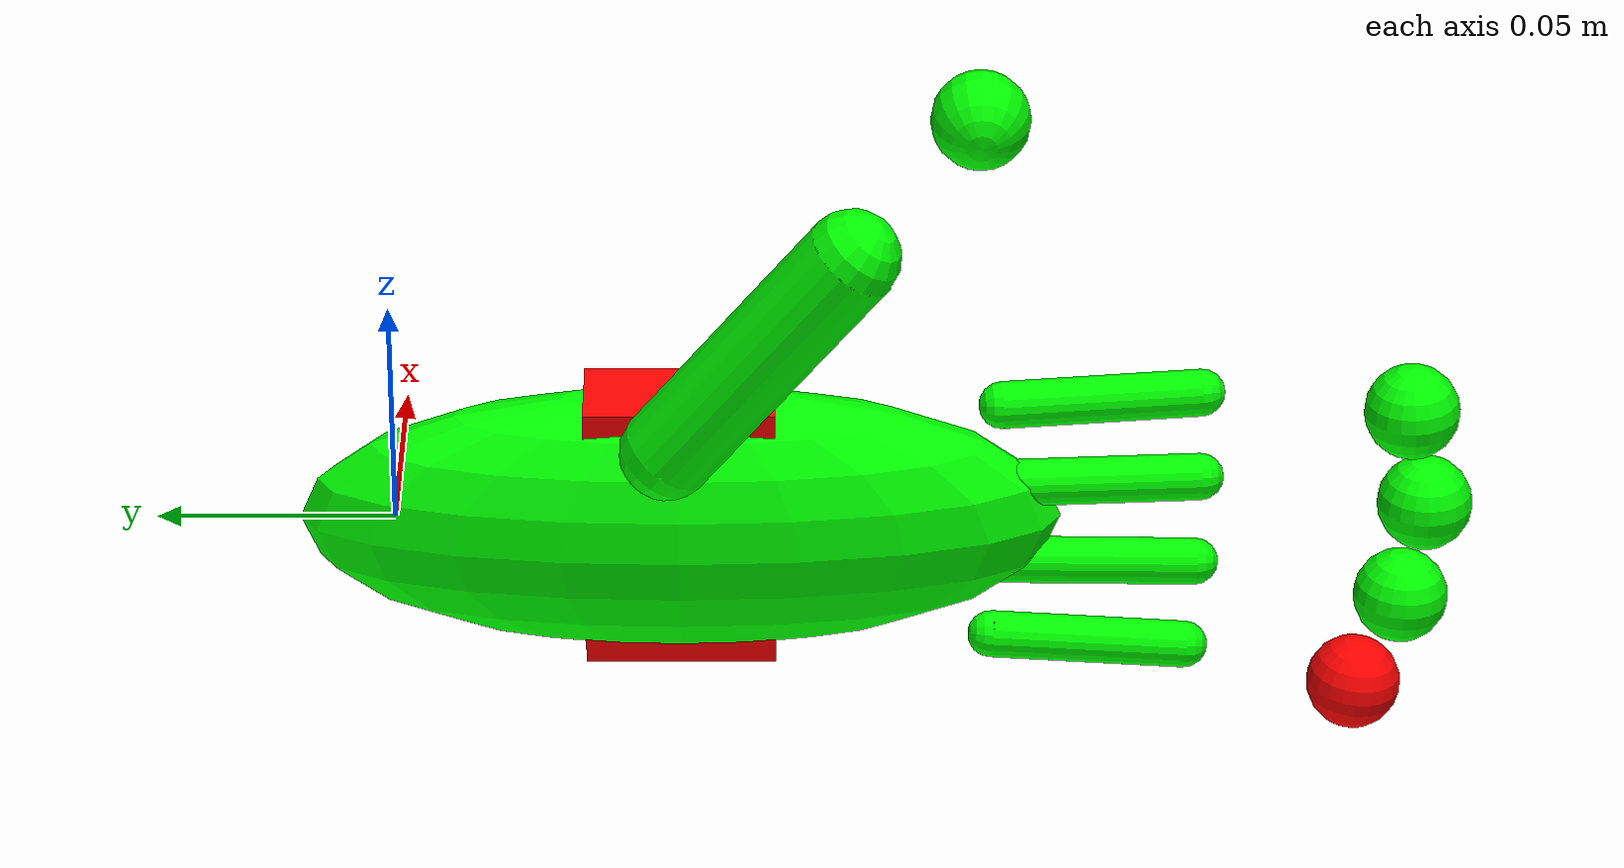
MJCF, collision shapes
<mujoco model="h1">
    <compiler angle="radian" meshdir="./meshes/" />

    <option timestep="0.02" iterations="10" ls_iterations="50">
        <flag eulerdamp="disable" />
    </option>

    <default>
        <!-- disable all contacts and use explicit collision pairs -->
        <geom condim="1" contype="0" conaffinity="0" />
        <!-- with this setting, the response time is around 1s -->
        <position kp="300" dampratio="1.0" inheritrange="1" />
        <joint damping="0.0" armature="1.0" frictionloss="0.0" />
        <default class="mimic_left">
            <site size="0.01" type="sphere" rgba="1 0 0 1" group="0" />
        </default>
    </default>

    <asset>
        <mesh name="L_hand_base_link" content_type="model/stl" file="L_hand_base_link.STL" />
        <mesh name="Link11_L" content_type="model/stl" file="Link11_L.STL" />
        <mesh name="Link12_L" content_type="model/stl" file="Link12_L.STL" />
        <mesh name="Link13_L" content_type="model/stl" file="Link13_L.STL" />
        <mesh name="Link14_L" content_type="model/stl" file="Link14_L.STL" />
        <mesh name="Link15_L" content_type="model/stl" file="Link15_L.STL" />
        <mesh name="Link16_L" content_type="model/stl" file="Link16_L.STL" />
        <mesh name="Link17_L" content_type="model/stl" file="Link17_L.STL" />
        <mesh name="Link18_L" content_type="model/stl" file="Link18_L.STL" />
        <mesh name="Link19_L" content_type="model/stl" file="Link19_L.STL" />
        <mesh name="Link20_L" content_type="model/stl" file="Link20_L.STL" />
        <mesh name="Link21_L" content_type="model/stl" file="Link21_L.STL" />
        <mesh name="Link22_L" content_type="model/stl" file="Link22_L.STL" />
    </asset>

    <worldbody>
        <body name="left_hand_base" pos="0 0 0.0">
            <site name="left_palm" pos="0 -0.06 0" class="mimic_left" type="box"
                size="0.01 0.02 0.03" />
            <joint name="left_pos_x" type="slide" pos="0 0 0" axis="1 0 0" range="-1.0 1.0" />
            <joint name="left_pos_y" type="slide" pos="0 0 0" axis="0 1 0" range="-1.0 1.0" />
            <joint name="left_pos_z" type="slide" pos="0 0 0" axis="0 0 1" range="-1.0 1.0" />
            <!-- create rotation x, y, z joints -->
            <joint name="left_rot_x" type="hinge" pos="0 0 0" axis="1 0 0" range="-6.28 6.28" />
            <joint name="left_rot_y" type="hinge" pos="0 0 0" axis="0 1 0" range="-6.28 6.28" />
            <joint name="left_rot_z" type="hinge" pos="0 0 0" axis="0 0 1" range="-6.28 6.28" />
            <!-- add palm collision, use ellipsoid since mujoco mjx doesn't support box-cylinder
            collision -->
            <geom type="ellipsoid" name="left_palm_collision" size="0.02 0.08 0.03" pos="0 -0.06 0"
                contype="0" conaffinity="0" group="3" density="0" rgba="0 1 0 1" />
            <geom type="mesh" contype="0" conaffinity="0" group="1" density="0" rgba="0.1 0.1 0.1 1"
                mesh="L_hand_base_link" />
            <geom type="mesh" rgba="0.1 0.1 0.1 1" mesh="L_hand_base_link" />
            <body name="left_thumb_proximal_base" pos="-0.01696 -0.0691 0.02045"
                quat="0.499998 0.5 -0.5 0.500002">
                <inertial pos="0.0048817 0.00038782 -0.00722"
                    quat="0.445981 0.352284 0.495833 0.656617"
                    mass="0.0018869" diaginertia="8.66031e-08 6.87331e-08 4.94199e-08" />
                <joint name="left_thumb_proximal_yaw_joint" pos="0 0 0" axis="0 0 1"
                    range="-0.1 1.3" />
                <geom type="mesh" contype="0" conaffinity="0" group="1" density="0"
                    rgba="0.1 0.1 0.1 1"
                    mesh="Link11_L" />
                <geom type="mesh" rgba="0.1 0.1 0.1 1" mesh="Link11_L" />
                <body name="left_thumb_proximal" pos="0.0099867 0.0098242 -0.0089"
                    quat="0.704571 -0.704573 -0.0598169 0.0598167">
                    <inertial pos="0.021936 -0.01279 -0.0080386"
                        quat="0.25452 0.660687 -0.251949 0.659723"
                        mass="0.0066101" diaginertia="2.78701e-06 2.44024e-06 8.6466e-07" />
                    <joint name="left_thumb_proximal_pitch_joint" pos="0 0 0" axis="0 0 -1"
                        range="0 0.5" />
                    <geom type="mesh" contype="0" conaffinity="0" group="1" density="0"
                        rgba="0.1 0.1 0.1 1"
                        mesh="Link12_L" />
                    <geom type="mesh" rgba="0.1 0.1 0.1 1" mesh="Link12_L" />
                    <geom name="left_thumb_intermediate_collision" type="capsule"
                        fromto="-0.003140 0.002501 -0.005 0.047924 -0.035228 -0.005"
                        size="0.01" contype="0" conaffinity="0" group="3" density="0"
                        rgba="0 1 0 1" />
                    <body name="left_thumb_intermediate" pos="0.04407 -0.034553 -0.0008">
                        <inertial pos="0.0095531 0.0016282 -0.0072002"
                            quat="0.30738 0.636732 -0.307526 0.636803" mass="0.0037844"
                            diaginertia="4.6532e-07 4.48114e-07 2.45646e-07" />
                        <joint name="left_thumb_intermediate_joint" pos="0 0 0" axis="0 0 -1"
                            range="0 0.8" />
                        <geom type="mesh" contype="0" conaffinity="0" group="1" density="0"
                            rgba="0.1 0.1 0.1 1"
                            mesh="Link13_L" />
                        <geom type="mesh" rgba="0.1 0.1 0.1 1" mesh="Link13_L" />
                        <body name="left_thumb_distal" pos="0.020248 -0.010156 -0.0012">
                            <inertial pos="0.0092888 -0.004953 -0.0060033"
                                quat="0.266264 0.65596 -0.262836 0.655544" mass="0.003344"
                                diaginertia="2.0026e-07 1.95246e-07 8.1594e-08" />
                            <joint name="left_thumb_distal_joint" pos="0 0 0" axis="0 0 -1"
                                range="0 1.2" />
                            <geom type="mesh" contype="0" conaffinity="0" group="1" density="0"
                                rgba="0.1 0.1 0.1 1"
                                mesh="Link14_L" />
                            <geom type="mesh" rgba="0.1 0.1 0.1 1" mesh="Link14_L" />
                            <geom name="left_thumb_collision" size="0.01"
                                pos="0.0159104 -0.0156076 -0.00599021"
                                contype="0" conaffinity="0"
                                group="3" density="0" rgba="0 1 0 1" />
                            <site name="left_thumb_tip" pos="0.0159104 -0.0156076 -0.00599021"
                                class="mimic_left" />
                        </body>
                    </body>
                </body>
            </body>
            <body name="left_index_proximal" pos="0.00028533 -0.13653 0.032268"
                quat="0.999848 -0.0174526 0 0">
                <inertial pos="0.0012971 -0.011934 -0.0059998"
                    quat="0.489677 0.510115 -0.489692 0.510099"
                    mass="0.0042405" diaginertia="6.9402e-07 6.62904e-07 2.10916e-07" />
                <joint name="left_index_proximal_joint" pos="0 0 0" axis="0 0 -1" range="0 1.7" />
                <geom type="mesh" contype="0" conaffinity="0" group="1" density="0"
                    rgba="0.1 0.1 0.1 1"
                    mesh="Link15_L" />
                <geom type="mesh" rgba="0.1 0.1 0.1 1" mesh="Link15_L" />
                <geom name="left_index_intermediate_collision" type="capsule"
                    fromto="-0.000437 0.009413 -0.005 0.002139 -0.032175 -0.005"
                    size="0.005" contype="0" conaffinity="0" group="3" density="0"
                    rgba="0 1 0 1" />
                <body name="left_index_intermediate" pos="-0.0024229 -0.032041 -0.001">
                    <inertial pos="0.0021753 -0.019567 -0.005"
                        quat="0.528694 0.469555 -0.528694 0.469555"
                        mass="0.0045682" diaginertia="7.8176e-07 7.72427e-07 8.47209e-08" />
                    <joint name="left_index_intermediate_joint" pos="0 0 0" axis="0 0 -1"
                        range="0 1.7" />
                    <geom type="mesh" contype="0" conaffinity="0" group="1" density="0"
                        rgba="0.1 0.1 0.1 1"
                        mesh="Link16_L" />
                    <geom type="mesh" rgba="0.1 0.1 0.1 1" mesh="Link16_L" />
                    <geom name="left_index_collision" size="0.01"
                        pos="-0.00412053 -0.0433132 -0.00501047"
                        contype="0" conaffinity="0"
                        group="3" density="0" rgba="0 1 0 1" />
                    <site name="left_index_tip" pos="-0.00412053 -0.0433132 -0.00501047"
                        class="mimic_left" />
                </body>
            </body>
            <body name="left_middle_proximal" pos="0.00028533 -0.1371 0.01295">
                <inertial pos="0.0012971 -0.011934 -0.0059999"
                    quat="0.489677 0.510115 -0.489692 0.510099"
                    mass="0.0042405" diaginertia="6.9402e-07 6.62904e-07 2.10916e-07" />
                <joint name="left_middle_proximal_joint" pos="0 0 0" axis="0 0 -1" range="0 1.7" />
                <geom type="mesh" contype="0" conaffinity="0" group="1" density="0"
                    rgba="0.1 0.1 0.1 1"
                    mesh="Link17_L" />
                <geom type="mesh" rgba="0.1 0.1 0.1 1" mesh="Link17_L" />
                <geom name="left_middle_intermediate_collision" type="capsule"
                    fromto="-0.000437 0.009413 -0.005 0.002139 -0.032175 -0.005"
                    size="0.005" contype="0" conaffinity="0" group="3" density="0"
                    rgba="0 1 0 1" />
                <body name="left_middle_intermediate" pos="-0.0024229 -0.032041 -0.001">
                    <inertial pos="0.001921 -0.020796 -0.0049999"
                        quat="0.531603 0.466115 -0.531728 0.466262"
                        mass="0.0050397" diaginertia="9.8385e-07 9.73288e-07 9.14016e-08" />
                    <joint name="left_middle_intermediate_joint" pos="0 0 0" axis="0 0 -1"
                        range="0 1.7" />
                    <geom type="mesh" contype="0" conaffinity="0" group="1" density="0"
                        rgba="0.1 0.1 0.1 1"
                        mesh="Link18_L" />
                    <geom type="mesh" rgba="0.1 0.1 0.1 1" mesh="Link18_L" />
                    <geom name="left_middle_collision" size="0.01"
                        pos="-0.00426879 -0.0466043 -0.00498678"
                        contype="0" conaffinity="0"
                        group="3" density="0" rgba="0 1 0 1" />
                    <site name="left_middle_tip" pos="-0.00426879 -0.0466043 -0.00498678"
                        class="mimic_left" />
                </body>
            </body>
            <body name="left_ring_proximal" pos="0.00028533 -0.13691 -0.0062872"
                quat="0.999657 0.026177 0 0">
                <inertial pos="0.0012971 -0.011934 -0.0059999"
                    quat="0.489677 0.510114 -0.489692 0.510099"
                    mass="0.0042405" diaginertia="6.9402e-07 6.62904e-07 2.10916e-07" />
                <joint name="left_ring_proximal_joint" pos="0 0 0" axis="0 0 -1" range="0 1.7" />
                <geom type="mesh" contype="0" conaffinity="0" group="1" density="0"
                    rgba="0.1 0.1 0.1 1"
                    mesh="Link19_L" />
                <geom type="mesh" rgba="0.1 0.1 0.1 1" mesh="Link19_L" />
                <geom name="left_ring_intermediate_collision" type="capsule"
                    fromto="-0.000437 0.009413 -0.005 0.002139 -0.032175 -0.005"
                    size="0.005" contype="0" conaffinity="0" group="3" density="0"
                    rgba="0 1 0 1" />
                <body name="left_ring_intermediate" pos="-0.0024229 -0.032041 -0.001">
                    <inertial pos="0.0021753 -0.019567 -0.005"
                        quat="0.528694 0.469556 -0.528694 0.469556"
                        mass="0.0045682" diaginertia="7.8176e-07 7.72437e-07 8.47208e-08" />
                    <joint name="left_ring_intermediate_joint" pos="0 0 0" axis="0 0 -1"
                        range="0 1.7" />
                    <geom type="mesh" contype="0" conaffinity="0" group="1" density="0"
                        rgba="0.1 0.1 0.1 1"
                        mesh="Link20_L" />
                    <geom type="mesh" rgba="0.1 0.1 0.1 1" mesh="Link20_L" />
                    <geom name="left_ring_collision" size="0.01"
                        pos="-0.00366554 -0.0433541 -0.00501047"
                        contype="0" conaffinity="0"
                        group="3" density="0" rgba="0 1 0 1" />
                    <site name="left_ring_tip" pos="-0.00366554 -0.0433541 -0.00501047"
                        class="mimic_left" />
                </body>
            </body>
            <body name="left_pinky_proximal" pos="0.00028533 -0.13571 -0.025488"
                quat="0.99863 0.0523361 0 0">
                <inertial pos="0.0012971 -0.011934 -0.0059999"
                    quat="0.489677 0.510114 -0.489692 0.510099"
                    mass="0.0042405" diaginertia="6.9402e-07 6.62904e-07 2.10916e-07" />
                <joint name="left_pinky_proximal_joint" pos="0 0 0" axis="0 0 -1" range="0 1.7" />
                <geom type="mesh" contype="0" conaffinity="0" group="1" density="0"
                    rgba="0.1 0.1 0.1 1"
                    mesh="Link21_L" />
                <geom type="mesh" rgba="0.1 0.1 0.1 1" mesh="Link21_L" />
                <geom name="left_pinky_intermediate_collision" type="capsule"
                    fromto="-0.000437 0.009413 -0.005 0.002139 -0.032175 -0.005"
                    size="0.005" contype="0" conaffinity="0" group="3" density="0"
                    rgba="0 1 0 1" />
                <body name="left_pinky_intermediate" pos="-0.0024229 -0.032041 -0.001">
                    <inertial pos="0.0024788 -0.016208 -0.0050001"
                        quat="0.526797 0.471683 -0.526793 0.471687"
                        mass="0.0036036" diaginertia="4.4881e-07 4.43809e-07 6.5736e-08" />
                    <joint name="left_pinky_intermediate_joint" pos="0 0 0" axis="0 0 -1"
                        range="0 1.7" />
                    <geom type="mesh" contype="0" conaffinity="0" group="1" density="0"
                        rgba="0.1 0.1 0.1 1"
                        mesh="Link22_L" />
                    <geom type="mesh" rgba="0.1 0.1 0.1 1" mesh="Link22_L" />
                    <geom name="left_pinky_collision" size="0.005"
                        pos="-0.00260734 -0.0362776 -0.00501047"
                        contype="0" conaffinity="0"
                        group="3" density="0" rgba="0 1 0 1" />
                    <site name="left_pinky_tip" pos="-0.00260734 -0.0362776 -0.00501047"
                        class="mimic_left" />
                </body>
            </body>
        </body>
    </worldbody>

    <actuator>
        <!-- Global position and rotation joints -->
        <position name="left_pos_x_position" joint="left_pos_x" />
        <position name="left_pos_y_position" joint="left_pos_y" />
        <position name="left_pos_z_position" joint="left_pos_z" />
        <position name="left_rot_x_position" joint="left_rot_x" />
        <position name="left_rot_y_position" joint="left_rot_y" />
        <position name="left_rot_z_position" joint="left_rot_z" />

        <!-- Thumb joints -->
        <position name="left_thumb_proximal_yaw_position" joint="left_thumb_proximal_yaw_joint" />
        <position name="left_thumb_proximal_pitch_position" joint="left_thumb_proximal_pitch_joint" />
        <position name="left_thumb_intermediate_position" joint="left_thumb_intermediate_joint" />
        <position name="left_thumb_distal_position" joint="left_thumb_distal_joint" />

        <!-- Index joints -->
        <position name="left_index_proximal_position" joint="left_index_proximal_joint" />
        <position name="left_index_intermediate_position" joint="left_index_intermediate_joint" />

        <!-- Middle joints -->
        <position name="left_middle_proximal_position" joint="left_middle_proximal_joint" />
        <position name="left_middle_intermediate_position" joint="left_middle_intermediate_joint" />

        <!-- Ring joints -->
        <position name="left_ring_proximal_position" joint="left_ring_proximal_joint" />
        <position name="left_ring_intermediate_position" joint="left_ring_intermediate_joint" />

        <!-- Pinky joints -->
        <position name="left_pinky_proximal_position" joint="left_pinky_proximal_joint" />
        <position name="left_pinky_intermediate_position" joint="left_pinky_intermediate_joint" />

    </actuator>
</mujoco>
